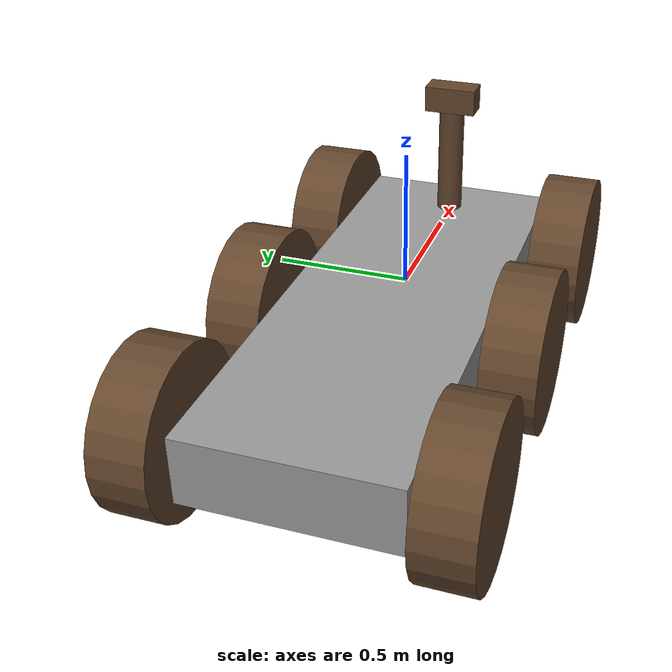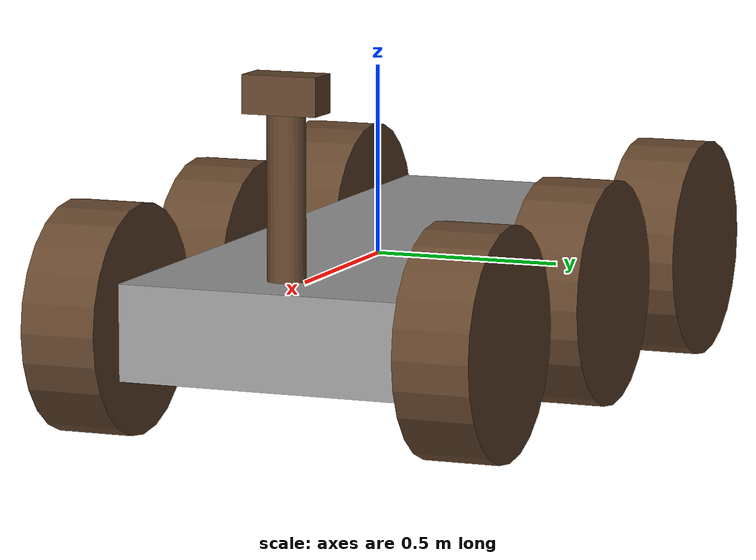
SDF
<?xml version='1.0'?>
<sdf version='1.7'>
  <model name='land_vehicle'>
    <link name='vehicle_body_link'>
      <inertial>
        <mass>1</mass>
        <inertia>
          <ixx>0.166667</ixx>
          <ixy>0</ixy>
          <ixz>0</ixz>
          <iyy>0.166667</iyy>
          <iyz>0</iyz>
          <izz>0.166667</izz>
        </inertia>
        <pose>0 0 0 0 -0 0</pose>
      </inertial>
      <pose>-0.177778 0 -0.1 0 -0 0</pose>
      <gravity>1</gravity>
      <self_collide>0</self_collide>
      <kinematic>0</kinematic>
      <enable_wind>0</enable_wind>
      <visual name='visual'>
        <pose>0 0 0 0 -0 0</pose>
        <geometry>
          <box>
            <size>2 0.75 0.25</size>
          </box>
        </geometry>
        <material>
          <lighting>1</lighting>
          <script>
            <uri>file://media/materials/scripts/gazebo.material</uri>
            <name>Gazebo/Grey</name>
          </script>
          <shader type='pixel'>
            <normal_map>__default__</normal_map>
          </shader>
          <ambient>0 0 0 1</ambient>
          <diffuse>0 0 0 1</diffuse>
          <specular>0 0 0 1</specular>
          <emissive>0 0 0 1</emissive>
        </material>
        <transparency>0</transparency>
        <cast_shadows>1</cast_shadows>
      </visual>
      <collision name='collision'>
        <laser_retro>0</laser_retro>
        <max_contacts>10</max_contacts>
        <pose>0 0 0 0 -0 0</pose>
        <geometry>
          <box>
            <size>2 0.75 0.25</size>
          </box>
        </geometry>
        <surface>
          <friction>
            <ode>
              <mu>1</mu>
              <mu2>1</mu2>
              <fdir1>0 0 0</fdir1>
              <slip1>0</slip1>
              <slip2>0</slip2>
            </ode>
            <torsional>
              <coefficient>1</coefficient>
              <patch_radius>0</patch_radius>
              <surface_radius>0</surface_radius>
              <use_patch_radius>1</use_patch_radius>
              <ode>
                <slip>0</slip>
              </ode>
            </torsional>
          </friction>
          <bounce>
            <restitution_coefficient>0</restitution_coefficient>
            <threshold>1e+06</threshold>
          </bounce>
          <contact>
            <collide_without_contact>0</collide_without_contact>
            <collide_without_contact_bitmask>1</collide_without_contact_bitmask>
            <collide_bitmask>1</collide_bitmask>
            <ode>
              <soft_cfm>0</soft_cfm>
              <soft_erp>0.2</soft_erp>
              <kp>1e+13</kp>
              <kd>1</kd>
              <max_vel>0.01</max_vel>
              <min_depth>0</min_depth>
            </ode>
            <bullet>
              <split_impulse>1</split_impulse>
              <split_impulse_penetration_threshold>-0.01</split_impulse_penetration_threshold>
              <soft_cfm>0</soft_cfm>
              <soft_erp>0.2</soft_erp>
              <kp>1e+13</kp>
              <kd>1</kd>
            </bullet>
          </contact>
        </surface>
      </collision>
    </link>
    <link name='BR_wheel_link'>
      <inertial>
        <mass>1</mass>
        <inertia>
          <ixx>0.145833</ixx>
          <ixy>0</ixy>
          <ixz>0</ixz>
          <iyy>0.145833</iyy>
          <iyz>0</iyz>
          <izz>0.125</izz>
        </inertia>
        <pose>0 0 0 0 -0 0</pose>
      </inertial>
      <pose>-0.977778 -0.5 -0.1 0 -0 0</pose>
      <gravity>1</gravity>
      <self_collide>0</self_collide>
      <kinematic>0</kinematic>
      <enable_wind>0</enable_wind>
      <visual name='visual'>
        <pose>0 0 0 1.5707 -0 0</pose>
        <geometry>
          <cylinder>
            <radius>0.3</radius>
            <length>0.2</length>
          </cylinder>
        </geometry>
        <material>
          <lighting>1</lighting>
          <script>
            <uri>file://media/materials/scripts/gazebo.material</uri>
            <name>Gazebo/Grey</name>
          </script>
          <shader type='pixel'>
            <normal_map>__default__</normal_map>
          </shader>
          <ambient>0.388 0.271 0.173 1</ambient>
          <diffuse>0.388 0.271 0.173 1</diffuse>
          <specular>0 0 0 1</specular>
          <emissive>0 0 0 1</emissive>
        </material>
        <transparency>0</transparency>
        <cast_shadows>1</cast_shadows>
      </visual>
      <collision name='collision'>
        <laser_retro>0</laser_retro>
        <max_contacts>10</max_contacts>
        <pose>0 0 0 1.5707 -0 0</pose>
        <geometry>
          <cylinder>
            <radius>0.3</radius>
            <length>0.2</length>
          </cylinder>
        </geometry>
        <surface>
          <friction>
            <ode>
              <mu>0.1</mu>
              <mu2>0.1</mu2>
              <fdir1>0 0 0</fdir1>
              <slip1>0</slip1>
              <slip2>0</slip2>
            </ode>
            <torsional>
              <coefficient>1</coefficient>
              <patch_radius>0</patch_radius>
              <surface_radius>0</surface_radius>
              <use_patch_radius>1</use_patch_radius>
              <ode>
                <slip>0</slip>
              </ode>
            </torsional>
          </friction>
          <bounce>
            <restitution_coefficient>0</restitution_coefficient>
            <threshold>1e+06</threshold>
          </bounce>
          <contact>
            <collide_without_contact>0</collide_without_contact>
            <collide_without_contact_bitmask>1</collide_without_contact_bitmask>
            <collide_bitmask>1</collide_bitmask>
            <ode>
              <soft_cfm>0</soft_cfm>
              <soft_erp>0.2</soft_erp>
              <kp>1e+13</kp>
              <kd>1</kd>
              <max_vel>0.01</max_vel>
              <min_depth>0</min_depth>
            </ode>
            <bullet>
              <split_impulse>1</split_impulse>
              <split_impulse_penetration_threshold>-0.01</split_impulse_penetration_threshold>
              <soft_cfm>0</soft_cfm>
              <soft_erp>0.2</soft_erp>
              <kp>1e+13</kp>
              <kd>1</kd>
            </bullet>
          </contact>
        </surface>
      </collision>
    </link>
    <link name='FL_wheel_link'>
      <inertial>
        <mass>1</mass>
        <inertia>
          <ixx>0.145833</ixx>
          <ixy>0</ixy>
          <ixz>0</ixz>
          <iyy>0.145833</iyy>
          <iyz>0</iyz>
          <izz>0.125</izz>
        </inertia>
        <pose>0 0 0 0 -0 0</pose>
      </inertial>
      <pose>0.622222 0.5 -0.1 0 -0 0</pose>
      <gravity>1</gravity>
      <self_collide>0</self_collide>
      <kinematic>0</kinematic>
      <enable_wind>0</enable_wind>
      <visual name='visual'>
        <pose>0 0 0 1.5707 -0 0</pose>
        <geometry>
          <cylinder>
            <radius>0.3</radius>
            <length>0.2</length>
          </cylinder>
        </geometry>
        <material>
          <lighting>1</lighting>
          <script>
            <uri>file://media/materials/scripts/gazebo.material</uri>
            <name>Gazebo/Grey</name>
          </script>
          <shader type='pixel'>
            <normal_map>__default__</normal_map>
          </shader>
          <ambient>0.388 0.271 0.173 1</ambient>
          <diffuse>0.388 0.271 0.173 1</diffuse>
          <specular>0 0 0 1</specular>
          <emissive>0 0 0 1</emissive>
        </material>
        <transparency>0</transparency>
        <cast_shadows>1</cast_shadows>
      </visual>
      <collision name='collision'>
        <laser_retro>0</laser_retro>
        <max_contacts>10</max_contacts>
        <pose>0 0 0 1.5707 -0 0</pose>
        <geometry>
          <cylinder>
            <radius>0.3</radius>
            <length>0.2</length>
          </cylinder>
        </geometry>
        <surface>
          <friction>
            <ode>
              <mu>0.1</mu>
              <mu2>0.1</mu2>
              <fdir1>0 0 0</fdir1>
              <slip1>0</slip1>
              <slip2>0</slip2>
            </ode>
            <torsional>
              <coefficient>1</coefficient>
              <patch_radius>0</patch_radius>
              <surface_radius>0</surface_radius>
              <use_patch_radius>1</use_patch_radius>
              <ode>
                <slip>0</slip>
              </ode>
            </torsional>
          </friction>
          <bounce>
            <restitution_coefficient>0</restitution_coefficient>
            <threshold>1e+06</threshold>
          </bounce>
          <contact>
            <collide_without_contact>0</collide_without_contact>
            <collide_without_contact_bitmask>1</collide_without_contact_bitmask>
            <collide_bitmask>1</collide_bitmask>
            <ode>
              <soft_cfm>0</soft_cfm>
              <soft_erp>0.2</soft_erp>
              <kp>1e+13</kp>
              <kd>1</kd>
              <max_vel>0.01</max_vel>
              <min_depth>0</min_depth>
            </ode>
            <bullet>
              <split_impulse>1</split_impulse>
              <split_impulse_penetration_threshold>-0.01</split_impulse_penetration_threshold>
              <soft_cfm>0</soft_cfm>
              <soft_erp>0.2</soft_erp>
              <kp>1e+13</kp>
              <kd>1</kd>
            </bullet>
          </contact>
        </surface>
      </collision>
    </link>
    <link name='CL_wheel_link'>
      <inertial>
        <mass>1</mass>
        <inertia>
          <ixx>0.145833</ixx>
          <ixy>0</ixy>
          <ixz>0</ixz>
          <iyy>0.145833</iyy>
          <iyz>0</iyz>
          <izz>0.125</izz>
        </inertia>
        <pose>0 0 0 0 -0 0</pose>
      </inertial>
      <pose>-0.177778 0.5 -0.1 0 -0 0</pose>
      <gravity>1</gravity>
      <self_collide>0</self_collide>
      <kinematic>0</kinematic>
      <enable_wind>0</enable_wind>
      <visual name='visual'>
        <pose>0 0 0 1.5707 -0 0</pose>
        <geometry>
          <cylinder>
            <radius>0.3</radius>
            <length>0.2</length>
          </cylinder>
        </geometry>
        <material>
          <lighting>1</lighting>
          <script>
            <uri>file://media/materials/scripts/gazebo.material</uri>
            <name>Gazebo/Grey</name>
          </script>
          <shader type='pixel'>
            <normal_map>__default__</normal_map>
          </shader>
          <ambient>0.388 0.271 0.173 1</ambient>
          <diffuse>0.388 0.271 0.173 1</diffuse>
          <specular>0 0 0 1</specular>
          <emissive>0 0 0 1</emissive>
        </material>
        <transparency>0</transparency>
        <cast_shadows>1</cast_shadows>
      </visual>
      <collision name='collision'>
        <laser_retro>0</laser_retro>
        <max_contacts>10</max_contacts>
        <pose>0 0 0 1.5707 -0 0</pose>
        <geometry>
          <cylinder>
            <radius>0.3</radius>
            <length>0.2</length>
          </cylinder>
        </geometry>
        <surface>
          <friction>
            <ode>
              <mu>0.1</mu>
              <mu2>0.1</mu2>
              <fdir1>0 0 0</fdir1>
              <slip1>0</slip1>
              <slip2>0</slip2>
            </ode>
            <torsional>
              <coefficient>1</coefficient>
              <patch_radius>0</patch_radius>
              <surface_radius>0</surface_radius>
              <use_patch_radius>1</use_patch_radius>
              <ode>
                <slip>0</slip>
              </ode>
            </torsional>
          </friction>
          <bounce>
            <restitution_coefficient>0</restitution_coefficient>
            <threshold>1e+06</threshold>
          </bounce>
          <contact>
            <collide_without_contact>0</collide_without_contact>
            <collide_without_contact_bitmask>1</collide_without_contact_bitmask>
            <collide_bitmask>1</collide_bitmask>
            <ode>
              <soft_cfm>0</soft_cfm>
              <soft_erp>0.2</soft_erp>
              <kp>1e+13</kp>
              <kd>1</kd>
              <max_vel>0.01</max_vel>
              <min_depth>0</min_depth>
            </ode>
            <bullet>
              <split_impulse>1</split_impulse>
              <split_impulse_penetration_threshold>-0.01</split_impulse_penetration_threshold>
              <soft_cfm>0</soft_cfm>
              <soft_erp>0.2</soft_erp>
              <kp>1e+13</kp>
              <kd>1</kd>
            </bullet>
          </contact>
        </surface>
      </collision>
    </link>
    <link name='CR_wheel_link'>
      <inertial>
        <mass>1</mass>
        <inertia>
          <ixx>0.145833</ixx>
          <ixy>0</ixy>
          <ixz>0</ixz>
          <iyy>0.145833</iyy>
          <iyz>0</iyz>
          <izz>0.125</izz>
        </inertia>
        <pose>0 0 0 0 -0 0</pose>
      </inertial>
      <pose>-0.177778 -0.5 -0.1 0 -0 0</pose>
      <gravity>1</gravity>
      <self_collide>0</self_collide>
      <kinematic>0</kinematic>
      <enable_wind>0</enable_wind>
      <visual name='visual'>
        <pose>0 0 0 1.5707 -0 0</pose>
        <geometry>
          <cylinder>
            <radius>0.3</radius>
            <length>0.2</length>
          </cylinder>
        </geometry>
        <material>
          <lighting>1</lighting>
          <script>
            <uri>file://media/materials/scripts/gazebo.material</uri>
            <name>Gazebo/Grey</name>
          </script>
          <shader type='pixel'>
            <normal_map>__default__</normal_map>
          </shader>
          <ambient>0.388 0.271 0.173 1</ambient>
          <diffuse>0.388 0.271 0.173 1</diffuse>
          <specular>0 0 0 1</specular>
          <emissive>0 0 0 1</emissive>
        </material>
        <transparency>0</transparency>
        <cast_shadows>1</cast_shadows>
      </visual>
      <collision name='collision'>
        <laser_retro>0</laser_retro>
        <max_contacts>10</max_contacts>
        <pose>0 0 0 1.5707 -0 0</pose>
        <geometry>
          <cylinder>
            <radius>0.3</radius>
            <length>0.2</length>
          </cylinder>
        </geometry>
        <surface>
          <friction>
            <ode>
              <mu>0.1</mu>
              <mu2>0.1</mu2>
              <fdir1>0 0 0</fdir1>
              <slip1>0</slip1>
              <slip2>0</slip2>
            </ode>
            <torsional>
              <coefficient>1</coefficient>
              <patch_radius>0</patch_radius>
              <surface_radius>0</surface_radius>
              <use_patch_radius>1</use_patch_radius>
              <ode>
                <slip>0</slip>
              </ode>
            </torsional>
          </friction>
          <bounce>
            <restitution_coefficient>0</restitution_coefficient>
            <threshold>1e+06</threshold>
          </bounce>
          <contact>
            <collide_without_contact>0</collide_without_contact>
            <collide_without_contact_bitmask>1</collide_without_contact_bitmask>
            <collide_bitmask>1</collide_bitmask>
            <ode>
              <soft_cfm>0</soft_cfm>
              <soft_erp>0.2</soft_erp>
              <kp>1e+13</kp>
              <kd>1</kd>
              <max_vel>0.01</max_vel>
              <min_depth>0</min_depth>
            </ode>
            <bullet>
              <split_impulse>1</split_impulse>
              <split_impulse_penetration_threshold>-0.01</split_impulse_penetration_threshold>
              <soft_cfm>0</soft_cfm>
              <soft_erp>0.2</soft_erp>
              <kp>1e+13</kp>
              <kd>1</kd>
            </bullet>
          </contact>
        </surface>
      </collision>
    </link>
    <link name='BL_wheel_link'>
      <inertial>
        <mass>1</mass>
        <inertia>
          <ixx>0.145833</ixx>
          <ixy>0</ixy>
          <ixz>0</ixz>
          <iyy>0.145833</iyy>
          <iyz>0</iyz>
          <izz>0.125</izz>
        </inertia>
        <pose>0 0 0 0 -0 0</pose>
      </inertial>
      <pose>-0.977778 0.5 -0.1 0 -0 0</pose>
      <gravity>1</gravity>
      <self_collide>0</self_collide>
      <kinematic>0</kinematic>
      <enable_wind>0</enable_wind>
      <visual name='visual'>
        <pose>0 0 0 1.5707 -0 0</pose>
        <geometry>
          <cylinder>
            <radius>0.3</radius>
            <length>0.2</length>
          </cylinder>
        </geometry>
        <material>
          <lighting>1</lighting>
          <script>
            <uri>file://media/materials/scripts/gazebo.material</uri>
            <name>Gazebo/Grey</name>
          </script>
          <shader type='pixel'>
            <normal_map>__default__</normal_map>
          </shader>
          <ambient>0.388 0.271 0.173 1</ambient>
          <diffuse>0.388 0.271 0.173 1</diffuse>
          <specular>0 0 0 1</specular>
          <emissive>0 0 0 1</emissive>
        </material>
        <transparency>0</transparency>
        <cast_shadows>1</cast_shadows>
      </visual>
      <collision name='collision'>
        <laser_retro>0</laser_retro>
        <max_contacts>10</max_contacts>
        <pose>0 0 0 1.5707 -0 0</pose>
        <geometry>
          <cylinder>
            <radius>0.3</radius>
            <length>0.2</length>
          </cylinder>
        </geometry>
        <surface>
          <friction>
            <ode>
              <mu>0.1</mu>
              <mu2>0.1</mu2>
              <fdir1>0 0 0</fdir1>
              <slip1>0</slip1>
              <slip2>0</slip2>
            </ode>
            <torsional>
              <coefficient>1</coefficient>
              <patch_radius>0</patch_radius>
              <surface_radius>0</surface_radius>
              <use_patch_radius>1</use_patch_radius>
              <ode>
                <slip>0</slip>
              </ode>
            </torsional>
          </friction>
          <bounce>
            <restitution_coefficient>0</restitution_coefficient>
            <threshold>1e+06</threshold>
          </bounce>
          <contact>
            <collide_without_contact>0</collide_without_contact>
            <collide_without_contact_bitmask>1</collide_without_contact_bitmask>
            <collide_bitmask>1</collide_bitmask>
            <ode>
              <soft_cfm>0</soft_cfm>
              <soft_erp>0.2</soft_erp>
              <kp>1e+13</kp>
              <kd>1</kd>
              <max_vel>0.01</max_vel>
              <min_depth>0</min_depth>
            </ode>
            <bullet>
              <split_impulse>1</split_impulse>
              <split_impulse_penetration_threshold>-0.01</split_impulse_penetration_threshold>
              <soft_cfm>0</soft_cfm>
              <soft_erp>0.2</soft_erp>
              <kp>1e+13</kp>
              <kd>1</kd>
            </bullet>
          </contact>
        </surface>
      </collision>
    </link>
    <link name='FR_wheel_link'>
      <inertial>
        <mass>1</mass>
        <inertia>
          <ixx>0.145833</ixx>
          <ixy>0</ixy>
          <ixz>0</ixz>
          <iyy>0.145833</iyy>
          <iyz>0</iyz>
          <izz>0.125</izz>
        </inertia>
        <pose>0 0 0 0 -0 0</pose>
      </inertial>
      <pose>0.622222 -0.5 -0.1 0 -0 0</pose>
      <gravity>1</gravity>
      <self_collide>0</self_collide>
      <kinematic>0</kinematic>
      <enable_wind>0</enable_wind>
      <visual name='visual'>
        <pose>0 0 0 1.5707 -0 0</pose>
        <geometry>
          <cylinder>
            <radius>0.3</radius>
            <length>0.2</length>
          </cylinder>
        </geometry>
        <material>
          <lighting>1</lighting>
          <script>
            <uri>file://media/materials/scripts/gazebo.material</uri>
            <name>Gazebo/Grey</name>
          </script>
          <shader type='pixel'>
            <normal_map>__default__</normal_map>
          </shader>
          <ambient>0.388 0.271 0.173 1</ambient>
          <diffuse>0.388 0.271 0.173 1</diffuse>
          <specular>0 0 0 1</specular>
          <emissive>0 0 0 1</emissive>
        </material>
        <transparency>0</transparency>
        <cast_shadows>1</cast_shadows>
      </visual>
      <collision name='collision'>
        <laser_retro>0</laser_retro>
        <max_contacts>10</max_contacts>
        <pose>0 0 0 1.5707 -0 0</pose>
        <geometry>
          <cylinder>
            <radius>0.3</radius>
            <length>0.2</length>
          </cylinder>
        </geometry>
        <surface>
          <friction>
            <ode>
              <mu>0.1</mu>
              <mu2>0.1</mu2>
              <fdir1>0 0 0</fdir1>
              <slip1>0</slip1>
              <slip2>0</slip2>
            </ode>
            <torsional>
              <coefficient>1</coefficient>
              <patch_radius>0</patch_radius>
              <surface_radius>0</surface_radius>
              <use_patch_radius>1</use_patch_radius>
              <ode>
                <slip>0</slip>
              </ode>
            </torsional>
          </friction>
          <bounce>
            <restitution_coefficient>0</restitution_coefficient>
            <threshold>1e+06</threshold>
          </bounce>
          <contact>
            <collide_without_contact>0</collide_without_contact>
            <collide_without_contact_bitmask>1</collide_without_contact_bitmask>
            <collide_bitmask>1</collide_bitmask>
            <ode>
              <soft_cfm>0</soft_cfm>
              <soft_erp>0.2</soft_erp>
              <kp>1e+13</kp>
              <kd>1</kd>
              <max_vel>0.01</max_vel>
              <min_depth>0</min_depth>
            </ode>
            <bullet>
              <split_impulse>1</split_impulse>
              <split_impulse_penetration_threshold>-0.01</split_impulse_penetration_threshold>
              <soft_cfm>0</soft_cfm>
              <soft_erp>0.2</soft_erp>
              <kp>1e+13</kp>
              <kd>1</kd>
            </bullet>
          </contact>
        </surface>
      </collision>
    </link>
    <link name='camera_holder_link'>
      <inertial>
        <mass>1</mass>
        <inertia>
          <ixx>0.145833</ixx>
          <ixy>0</ixy>
          <ixz>0</ixz>
          <iyy>0.145833</iyy>
          <iyz>0</iyz>
          <izz>0.125</izz>
        </inertia>
        <pose>0 0 0 0 -0 0</pose>
      </inertial>
      <pose>0.622222 0 0.2 0 -0 0</pose>
      <gravity>1</gravity>
      <self_collide>0</self_collide>
      <kinematic>0</kinematic>
      <enable_wind>0</enable_wind>
      <visual name='visual'>
        <pose>0 0 0 0 -0 0</pose>
        <geometry>
          <cylinder>
            <radius>0.05</radius>
            <length>0.5</length>
          </cylinder>
        </geometry>
        <material>
          <lighting>1</lighting>
          <script>
            <uri>file://media/materials/scripts/gazebo.material</uri>
            <name>Gazebo/Grey</name>
          </script>
          <shader type='pixel'>
            <normal_map>__default__</normal_map>
          </shader>
          <ambient>0.388 0.271 0.173 1</ambient>
          <diffuse>0.388 0.271 0.173 1</diffuse>
          <specular>0 0 0 1</specular>
          <emissive>0 0 0 1</emissive>
        </material>
        <transparency>0</transparency>
        <cast_shadows>1</cast_shadows>
      </visual>
      <collision name='collision'>
        <laser_retro>0</laser_retro>
        <max_contacts>10</max_contacts>
        <pose>0 0 0 0 -0 0</pose>
        <geometry>
          <cylinder>
            <radius>0.05</radius>
            <length>0.5</length>
          </cylinder>
        </geometry>
        <surface>
          <friction>
            <ode>
              <mu>1</mu>
              <mu2>1</mu2>
              <fdir1>0 0 0</fdir1>
              <slip1>0</slip1>
              <slip2>0</slip2>
            </ode>
            <torsional>
              <coefficient>1</coefficient>
              <patch_radius>0</patch_radius>
              <surface_radius>0</surface_radius>
              <use_patch_radius>1</use_patch_radius>
              <ode>
                <slip>0</slip>
              </ode>
            </torsional>
          </friction>
          <bounce>
            <restitution_coefficient>0</restitution_coefficient>
            <threshold>1e+06</threshold>
          </bounce>
          <contact>
            <collide_without_contact>0</collide_without_contact>
            <collide_without_contact_bitmask>1</collide_without_contact_bitmask>
            <collide_bitmask>1</collide_bitmask>
            <ode>
              <soft_cfm>0</soft_cfm>
              <soft_erp>0.2</soft_erp>
              <kp>1e+13</kp>
              <kd>1</kd>
              <max_vel>0.01</max_vel>
              <min_depth>0</min_depth>
            </ode>
            <bullet>
              <split_impulse>1</split_impulse>
              <split_impulse_penetration_threshold>-0.01</split_impulse_penetration_threshold>
              <soft_cfm>0</soft_cfm>
              <soft_erp>0.2</soft_erp>
              <kp>1e+13</kp>
              <kd>1</kd>
            </bullet>
          </contact>
        </surface>
      </collision>
    </link>
    <link name='camera_link'>
      <inertial>
        <mass>1</mass>
        <inertia>
          <ixx>0.166667</ixx>
          <ixy>0</ixy>
          <ixz>0</ixz>
          <iyy>0.166667</iyy>
          <iyz>0</iyz>
          <izz>0.166667</izz>
        </inertia>
        <pose>0 0 0 0 -0 0</pose>
      </inertial>
      <pose>0.622222 0 0.5 0 -0 0</pose>
      <gravity>1</gravity>
      <self_collide>0</self_collide>
      <kinematic>0</kinematic>
      <enable_wind>0</enable_wind>
      <visual name='visual'>
        <pose>0 0 0 0 -0 0</pose>
        <geometry>
          <box>
            <size>0.1 0.2 0.1</size>
          </box>
        </geometry>
        <material>
          <lighting>1</lighting>
          <script>
            <uri>file://media/materials/scripts/gazebo.material</uri>
            <name>Gazebo/Grey</name>
          </script>
          <shader type='pixel'>
            <normal_map>__default__</normal_map>
          </shader>
          <ambient>0.388 0.271 0.173 1</ambient>
          <diffuse>0.388 0.271 0.173 1</diffuse>
          <specular>0.01 0.01 0.01 1</specular>
          <emissive>0 0 0 1</emissive>
        </material>
        <transparency>0</transparency>
        <cast_shadows>1</cast_shadows>
      </visual>
      <collision name='collision'>
        <laser_retro>0</laser_retro>
        <max_contacts>10</max_contacts>
        <pose>0 0 0 0 -0 0</pose>
        <geometry>
          <box>
            <size>0.1 0.2 0.1</size>
          </box>
        </geometry>
        <surface>
          <friction>
            <ode>
              <mu>1</mu>
              <mu2>1</mu2>
              <fdir1>0 0 0</fdir1>
              <slip1>0</slip1>
              <slip2>0</slip2>
            </ode>
            <torsional>
              <coefficient>1</coefficient>
              <patch_radius>0</patch_radius>
              <surface_radius>0</surface_radius>
              <use_patch_radius>1</use_patch_radius>
              <ode>
                <slip>0</slip>
              </ode>
            </torsional>
          </friction>
          <bounce>
            <restitution_coefficient>0</restitution_coefficient>
            <threshold>1e+06</threshold>
          </bounce>
          <contact>
            <collide_without_contact>0</collide_without_contact>
            <collide_without_contact_bitmask>1</collide_without_contact_bitmask>
            <collide_bitmask>1</collide_bitmask>
            <ode>
              <soft_cfm>0</soft_cfm>
              <soft_erp>0.2</soft_erp>
              <kp>1e+13</kp>
              <kd>1</kd>
              <max_vel>0.01</max_vel>
              <min_depth>0</min_depth>
            </ode>
            <bullet>
              <split_impulse>1</split_impulse>
              <split_impulse_penetration_threshold>-0.01</split_impulse_penetration_threshold>
              <soft_cfm>0</soft_cfm>
              <soft_erp>0.2</soft_erp>
              <kp>1e+13</kp>
              <kd>1</kd>
            </bullet>
          </contact>
        </surface>
      </collision>
      <sensor name="camera" type="camera">
          <camera>
            <horizontal_fov>1.047</horizontal_fov>
            <image>
              <width>320</width>
              <height>240</height>
            </image>
            <clip>
              <near>0.1</near>
              <far>100</far>
            </clip>
          </camera>
          <always_on>1</always_on>
          <update_rate>30</update_rate>
          <visualize>true</visualize>
          <topic>camera</topic>
        </sensor>
    </link>
    <joint name='vehicle_body_link_JOINT_10' type='revolute'>
      <parent>vehicle_body_link</parent>
      <child>BR_wheel_link</child>
      <pose>0 0 0 0 -0 0</pose>
      <axis>
        <xyz>0 1 0</xyz>
        <limit>
          <lower>-1.79769e+308</lower>
          <upper>1.79769e+308</upper>
          <effort>-1</effort>
          <velocity>-1</velocity>
        </limit>
        <dynamics>
          <spring_reference>0</spring_reference>
          <spring_stiffness>0</spring_stiffness>
          <damping>0</damping>
        </dynamics>
      </axis>
      <physics>
        <ode>
          <limit>
            <cfm>0</cfm>
            <erp>0.2</erp>
          </limit>
          <suspension>
            <cfm>0</cfm>
            <erp>0.2</erp>
          </suspension>
        </ode>
      </physics>
    </joint>
    <joint name='vehicle_body_link_JOINT_11' type='revolute'>
      <parent>vehicle_body_link</parent>
      <child>camera_holder_link</child>
      <pose>0 0 0 0 -0 0</pose>
      <axis>
        <xyz>0 0 1</xyz>
        <limit>
          <lower>-1.79769e+308</lower>
          <upper>1.79769e+308</upper>
          <effort>-1</effort>
          <velocity>-1</velocity>
        </limit>
        <dynamics>
          <spring_reference>0</spring_reference>
          <spring_stiffness>0</spring_stiffness>
          <damping>0</damping>
        </dynamics>
      </axis>
      <physics>
        <ode>
          <limit>
            <cfm>0</cfm>
            <erp>0.2</erp>
          </limit>
          <suspension>
            <cfm>0</cfm>
            <erp>0.2</erp>
          </suspension>
        </ode>
      </physics>
    </joint>
    <joint name='FR_wheel_joint' type='revolute'>
      <parent>vehicle_body_link</parent>
      <child>FR_wheel_link</child>
      <pose>0 0 0 0 -0 0</pose>
      <axis>
        <xyz>0 1 0</xyz>
        <limit>
          <lower>-1.79769e+308</lower>
          <upper>1.79769e+308</upper>
          <effort>-1</effort>
          <velocity>-1</velocity>
        </limit>
        <dynamics>
          <spring_reference>0</spring_reference>
          <spring_stiffness>0</spring_stiffness>
          <damping>0</damping>
        </dynamics>
      </axis>
      <physics>
        <ode>
          <limit>
            <cfm>0</cfm>
            <erp>0.2</erp>
          </limit>
          <suspension>
            <cfm>0</cfm>
            <erp>0.2</erp>
          </suspension>
        </ode>
      </physics>
    </joint>
    <joint name='FL_wheel_joint' type='revolute'>
      <parent>vehicle_body_link</parent>
      <child>FL_wheel_link</child>
      <pose>0 0 0 0 -0 0</pose>
      <axis>
        <xyz>0 1 0</xyz>
        <limit>
          <lower>-1.79769e+308</lower>
          <upper>1.79769e+308</upper>
          <effort>-1</effort>
          <velocity>-1</velocity>
        </limit>
        <dynamics>
          <spring_reference>0</spring_reference>
          <spring_stiffness>0</spring_stiffness>
          <damping>0</damping>
        </dynamics>
      </axis>
      <physics>
        <ode>
          <limit>
            <cfm>0</cfm>
            <erp>0.2</erp>
          </limit>
          <suspension>
            <cfm>0</cfm>
            <erp>0.2</erp>
          </suspension>
        </ode>
      </physics>
    </joint>
    <joint name='vehicle_body_link_JOINT_7' type='revolute'>
      <parent>vehicle_body_link</parent>
      <child>CR_wheel_link</child>
      <pose>0 0 0 0 -0 0</pose>
      <axis>
        <xyz>0 1 0</xyz>
        <limit>
          <lower>-1.79769e+308</lower>
          <upper>1.79769e+308</upper>
          <effort>-1</effort>
          <velocity>-1</velocity>
        </limit>
        <dynamics>
          <spring_reference>0</spring_reference>
          <spring_stiffness>0</spring_stiffness>
          <damping>0</damping>
        </dynamics>
      </axis>
      <physics>
        <ode>
          <limit>
            <cfm>0</cfm>
            <erp>0.2</erp>
          </limit>
          <suspension>
            <cfm>0</cfm>
            <erp>0.2</erp>
          </suspension>
        </ode>
      </physics>
    </joint>
    <joint name='vehicle_body_link_JOINT_8' type='revolute'>
      <parent>vehicle_body_link</parent>
      <child>CL_wheel_link</child>
      <pose>0 0 0 0 -0 0</pose>
      <axis>
        <xyz>0 1 0</xyz>
        <limit>
          <lower>-1.79769e+308</lower>
          <upper>1.79769e+308</upper>
          <effort>-1</effort>
          <velocity>-1</velocity>
        </limit>
        <dynamics>
          <spring_reference>0</spring_reference>
          <spring_stiffness>0</spring_stiffness>
          <damping>0</damping>
        </dynamics>
      </axis>
      <physics>
        <ode>
          <limit>
            <cfm>0</cfm>
            <erp>0.2</erp>
          </limit>
          <suspension>
            <cfm>0</cfm>
            <erp>0.2</erp>
          </suspension>
        </ode>
      </physics>
    </joint>
    <joint name='vehicle_body_link_JOINT_9' type='revolute'>
      <parent>vehicle_body_link</parent>
      <child>BL_wheel_link</child>
      <pose>0 0 0 0 -0 0</pose>
      <axis>
        <xyz>0 1 0</xyz>
        <limit>
          <lower>-1.79769e+308</lower>
          <upper>1.79769e+308</upper>
          <effort>-1</effort>
          <velocity>-1</velocity>
        </limit>
        <dynamics>
          <spring_reference>0</spring_reference>
          <spring_stiffness>0</spring_stiffness>
          <damping>0</damping>
        </dynamics>
      </axis>
      <physics>
        <ode>
          <limit>
            <cfm>0</cfm>
            <erp>0.2</erp>
          </limit>
          <suspension>
            <cfm>0</cfm>
            <erp>0.2</erp>
          </suspension>
        </ode>
      </physics>
    </joint>
    <joint name='camera_holder_link_JOINT_12' type='fixed'>
      <parent>camera_holder_link</parent>
      <child>camera_link</child>
      <pose>0 0 0 0 -0 0</pose>
      <physics>
        <ode>
          <limit>
            <cfm>0</cfm>
            <erp>0.2</erp>
          </limit>
          <suspension>
            <cfm>0</cfm>
            <erp>0.2</erp>
          </suspension>
        </ode>
      </physics>
    </joint>
    <static>0</static>
    <allow_auto_disable>1</allow_auto_disable>
    <plugin
        filename="ignition-gazebo-diff-drive-system"
        name="ignition::gazebo::systems::DiffDrive">
        <left_joint>FL_wheel_joint</left_joint>
        <right_joint>FR_wheel_joint</right_joint>
        <wheel_separation>0.75</wheel_separation>
        <wheel_radius>0.3</wheel_radius>
        <max_linear_acceleration>1</max_linear_acceleration>
        <min_linear_acceleration>-1</min_linear_acceleration>
        <max_angular_acceleration>2</max_angular_acceleration>
        <min_angular_acceleration>-2</min_angular_acceleration>
        <max_linear_velocity>0.5</max_linear_velocity>
        <min_linear_velocity>-0.5</min_linear_velocity>
        <max_angular_velocity>1</max_angular_velocity>
        <min_angular_velocity>-1</min_angular_velocity>
      </plugin>
  </model>
</sdf>
